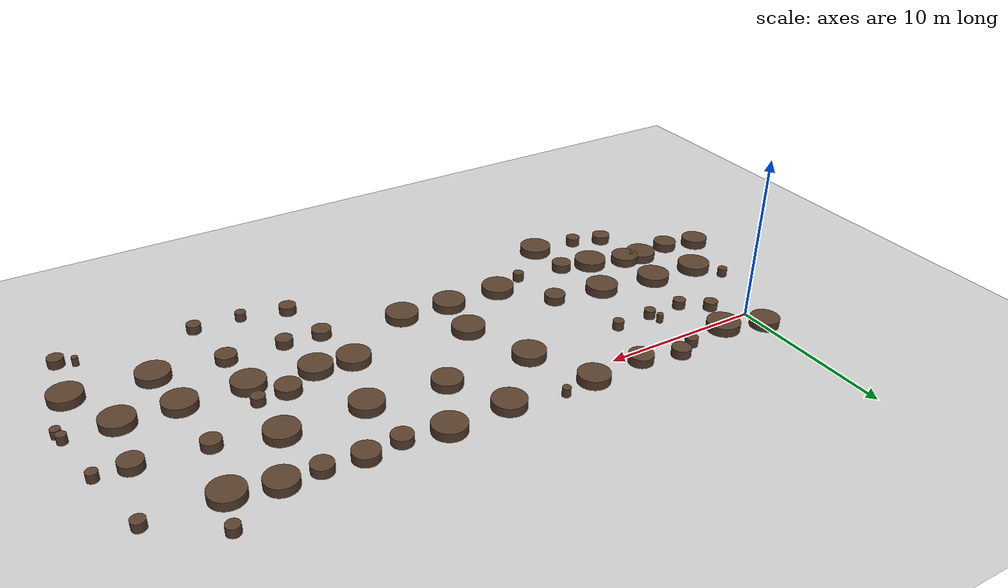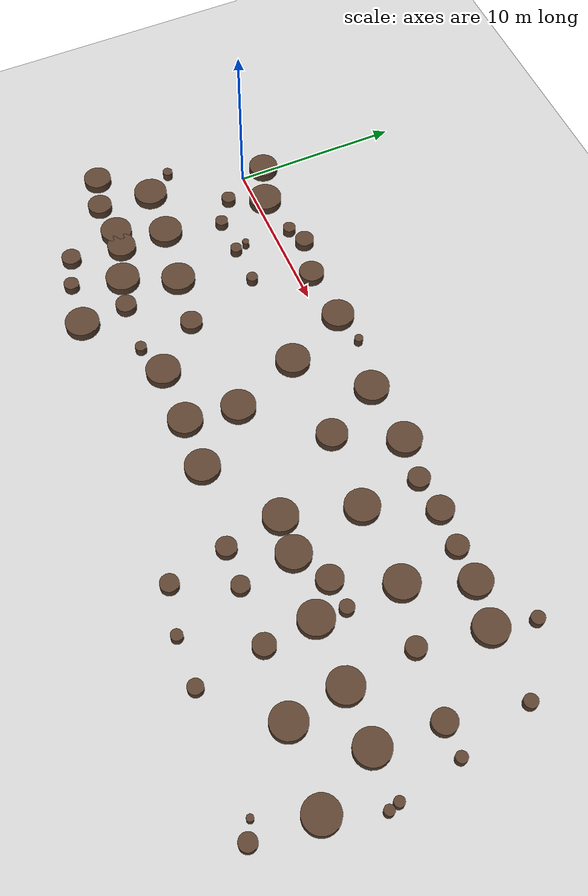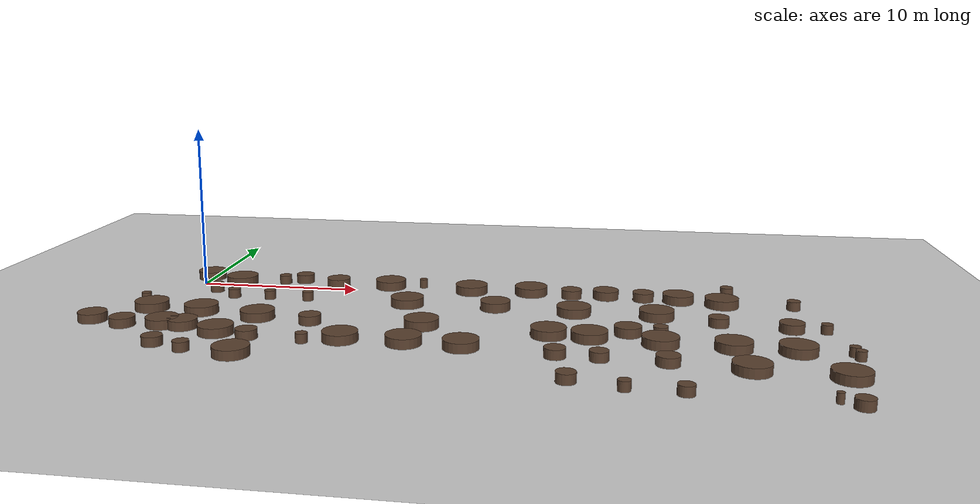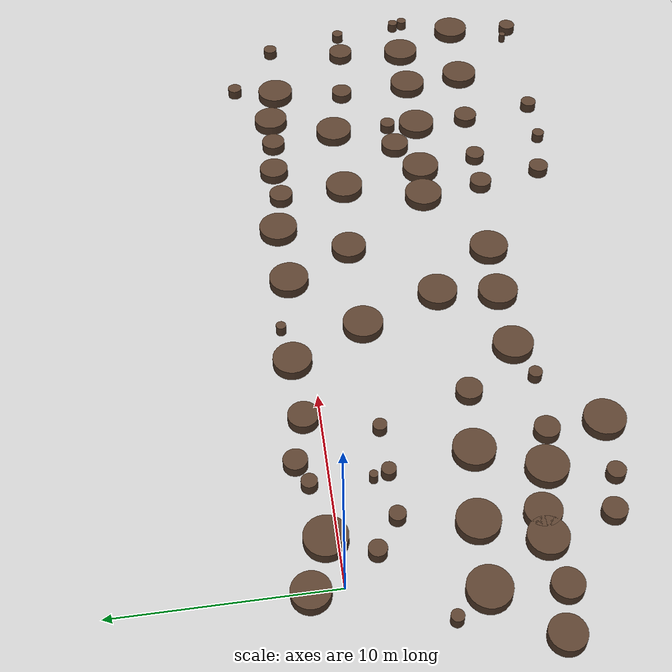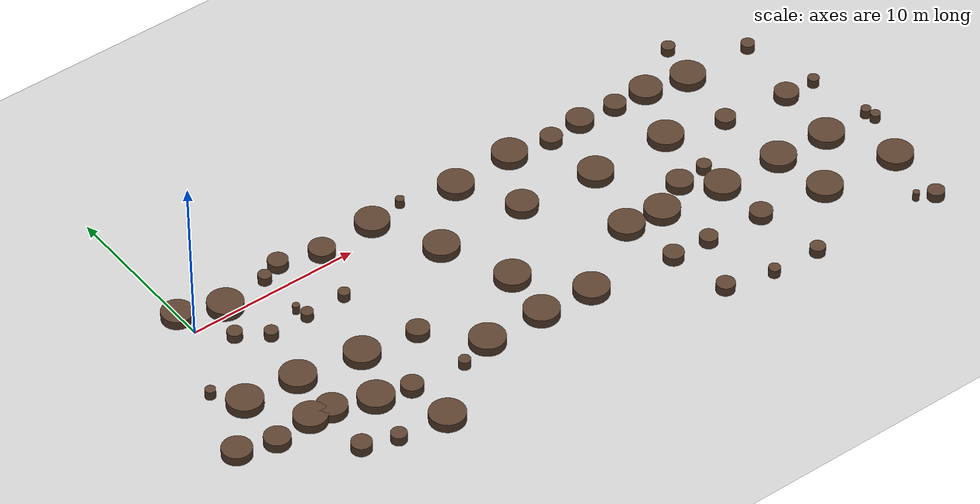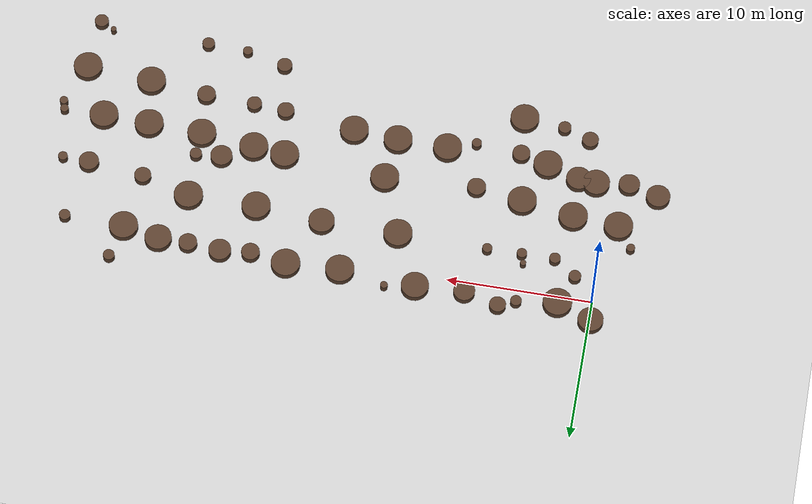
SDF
<?xml version="1.0"?>
<sdf version="1.6">
  <world name="orchard_world">
    <include>
      <uri>model://sun</uri>
    </include>

    <include>
      <uri>model://ground_plane</uri>
    </include>

    <!-- Trees: 66 cylinders (height=0.550m) -->
    <model name="tree_0000">
      <static>true</static>
      <pose>37.219902 -15.308496 0 0 0 0</pose>
      <link name="link">
        <collision name="trunk_collision">
          <pose>0 0 0.275000 0 0 0</pose>
          <geometry>
            <cylinder>
              <radius>0.481341</radius>
              <length>0.550000</length>
            </cylinder>
          </geometry>
        </collision>
        <visual name="trunk_visual">
          <pose>0 0 0.275000 0 0 0</pose>
          <geometry>
            <cylinder>
              <radius>0.481341</radius>
              <length>0.550000</length>
            </cylinder>
          </geometry>
          <material>
            <ambient>0.25 0.18 0.12 1</ambient>
            <diffuse>0.35 0.25 0.18 1</diffuse>
          </material>
        </visual>
      </link>
    </model>
    <model name="tree_0001">
      <static>true</static>
      <pose>29.460762 -14.848864 0 0 0 0</pose>
      <link name="link">
        <collision name="trunk_collision">
          <pose>0 0 0.275000 0 0 0</pose>
          <geometry>
            <cylinder>
              <radius>0.434552</radius>
              <length>0.550000</length>
            </cylinder>
          </geometry>
        </collision>
        <visual name="trunk_visual">
          <pose>0 0 0.275000 0 0 0</pose>
          <geometry>
            <cylinder>
              <radius>0.434552</radius>
              <length>0.550000</length>
            </cylinder>
          </geometry>
          <material>
            <ambient>0.25 0.18 0.12 1</ambient>
            <diffuse>0.35 0.25 0.18 1</diffuse>
          </material>
        </visual>
      </link>
    </model>
    <model name="tree_0002">
      <static>true</static>
      <pose>36.266296 -14.798975 0 0 0 0</pose>
      <link name="link">
        <collision name="trunk_collision">
          <pose>0 0 0.275000 0 0 0</pose>
          <geometry>
            <cylinder>
              <radius>0.190020</radius>
              <length>0.550000</length>
            </cylinder>
          </geometry>
        </collision>
        <visual name="trunk_visual">
          <pose>0 0 0.275000 0 0 0</pose>
          <geometry>
            <cylinder>
              <radius>0.190020</radius>
              <length>0.550000</length>
            </cylinder>
          </geometry>
          <material>
            <ambient>0.25 0.18 0.12 1</ambient>
            <diffuse>0.35 0.25 0.18 1</diffuse>
          </material>
        </visual>
      </link>
    </model>
    <model name="tree_0003">
      <static>true</static>
      <pose>26.624523 -14.742422 0 0 0 0</pose>
      <link name="link">
        <collision name="trunk_collision">
          <pose>0 0 0.275000 0 0 0</pose>
          <geometry>
            <cylinder>
              <radius>0.333014</radius>
              <length>0.550000</length>
            </cylinder>
          </geometry>
        </collision>
        <visual name="trunk_visual">
          <pose>0 0 0.275000 0 0 0</pose>
          <geometry>
            <cylinder>
              <radius>0.333014</radius>
              <length>0.550000</length>
            </cylinder>
          </geometry>
          <material>
            <ambient>0.25 0.18 0.12 1</ambient>
            <diffuse>0.35 0.25 0.18 1</diffuse>
          </material>
        </visual>
      </link>
    </model>
    <model name="tree_0004">
      <static>true</static>
      <pose>23.874138 -14.086459 0 0 0 0</pose>
      <link name="link">
        <collision name="trunk_collision">
          <pose>0 0 0.275000 0 0 0</pose>
          <geometry>
            <cylinder>
              <radius>0.524310</radius>
              <length>0.550000</length>
            </cylinder>
          </geometry>
        </collision>
        <visual name="trunk_visual">
          <pose>0 0 0.275000 0 0 0</pose>
          <geometry>
            <cylinder>
              <radius>0.524310</radius>
              <length>0.550000</length>
            </cylinder>
          </geometry>
          <material>
            <ambient>0.25 0.18 0.12 1</ambient>
            <diffuse>0.35 0.25 0.18 1</diffuse>
          </material>
        </visual>
      </link>
    </model>
    <model name="tree_0005">
      <static>true</static>
      <pose>6.638331 -12.941549 0 0 0 0</pose>
      <link name="link">
        <collision name="trunk_collision">
          <pose>0 0 0.275000 0 0 0</pose>
          <geometry>
            <cylinder>
              <radius>1.000000</radius>
              <length>0.550000</length>
            </cylinder>
          </geometry>
        </collision>
        <visual name="trunk_visual">
          <pose>0 0 0.275000 0 0 0</pose>
          <geometry>
            <cylinder>
              <radius>1.000000</radius>
              <length>0.550000</length>
            </cylinder>
          </geometry>
          <material>
            <ambient>0.25 0.18 0.12 1</ambient>
            <diffuse>0.35 0.25 0.18 1</diffuse>
          </material>
        </visual>
      </link>
    </model>
    <model name="tree_0006">
      <static>true</static>
      <pose>3.782352 -12.650820 0 0 0 0</pose>
      <link name="link">
        <collision name="trunk_collision">
          <pose>0 0 0.275000 0 0 0</pose>
          <geometry>
            <cylinder>
              <radius>0.447337</radius>
              <length>0.550000</length>
            </cylinder>
          </geometry>
        </collision>
        <visual name="trunk_visual">
          <pose>0 0 0.275000 0 0 0</pose>
          <geometry>
            <cylinder>
              <radius>0.447337</radius>
              <length>0.550000</length>
            </cylinder>
          </geometry>
          <material>
            <ambient>0.25 0.18 0.12 1</ambient>
            <diffuse>0.35 0.25 0.18 1</diffuse>
          </material>
        </visual>
      </link>
    </model>
    <model name="tree_0007">
      <static>true</static>
      <pose>1.895289 -12.027858 0 0 0 0</pose>
      <link name="link">
        <collision name="trunk_collision">
          <pose>0 0 0.275000 0 0 0</pose>
          <geometry>
            <cylinder>
              <radius>0.571234</radius>
              <length>0.550000</length>
            </cylinder>
          </geometry>
        </collision>
        <visual name="trunk_visual">
          <pose>0 0 0.275000 0 0 0</pose>
          <geometry>
            <cylinder>
              <radius>0.571234</radius>
              <length>0.550000</length>
            </cylinder>
          </geometry>
          <material>
            <ambient>0.25 0.18 0.12 1</ambient>
            <diffuse>0.35 0.25 0.18 1</diffuse>
          </material>
        </visual>
      </link>
    </model>
    <model name="tree_0008">
      <static>true</static>
      <pose>37.454666 -11.682571 0 0 0 0</pose>
      <link name="link">
        <collision name="trunk_collision">
          <pose>0 0 0.275000 0 0 0</pose>
          <geometry>
            <cylinder>
              <radius>1.000000</radius>
              <length>0.550000</length>
            </cylinder>
          </geometry>
        </collision>
        <visual name="trunk_visual">
          <pose>0 0 0.275000 0 0 0</pose>
          <geometry>
            <cylinder>
              <radius>1.000000</radius>
              <length>0.550000</length>
            </cylinder>
          </geometry>
          <material>
            <ambient>0.25 0.18 0.12 1</ambient>
            <diffuse>0.35 0.25 0.18 1</diffuse>
          </material>
        </visual>
      </link>
    </model>
    <model name="tree_0009">
      <static>true</static>
      <pose>32.858498 -11.331612 0 0 0 0</pose>
      <link name="link">
        <collision name="trunk_collision">
          <pose>0 0 0.275000 0 0 0</pose>
          <geometry>
            <cylinder>
              <radius>1.000000</radius>
              <length>0.550000</length>
            </cylinder>
          </geometry>
        </collision>
        <visual name="trunk_visual">
          <pose>0 0 0.275000 0 0 0</pose>
          <geometry>
            <cylinder>
              <radius>1.000000</radius>
              <length>0.550000</length>
            </cylinder>
          </geometry>
          <material>
            <ambient>0.25 0.18 0.12 1</ambient>
            <diffuse>0.35 0.25 0.18 1</diffuse>
          </material>
        </visual>
      </link>
    </model>
    <model name="tree_0010">
      <static>true</static>
      <pose>28.840132 -10.903311 0 0 0 0</pose>
      <link name="link">
        <collision name="trunk_collision">
          <pose>0 0 0.275000 0 0 0</pose>
          <geometry>
            <cylinder>
              <radius>0.635298</radius>
              <length>0.550000</length>
            </cylinder>
          </geometry>
        </collision>
        <visual name="trunk_visual">
          <pose>0 0 0.275000 0 0 0</pose>
          <geometry>
            <cylinder>
              <radius>0.635298</radius>
              <length>0.550000</length>
            </cylinder>
          </geometry>
          <material>
            <ambient>0.25 0.18 0.12 1</ambient>
            <diffuse>0.35 0.25 0.18 1</diffuse>
          </material>
        </visual>
      </link>
    </model>
    <model name="tree_0011">
      <static>true</static>
      <pose>25.411903 -10.767055 0 0 0 0</pose>
      <link name="link">
        <collision name="trunk_collision">
          <pose>0 0 0.275000 0 0 0</pose>
          <geometry>
            <cylinder>
              <radius>0.511634</radius>
              <length>0.550000</length>
            </cylinder>
          </geometry>
        </collision>
        <visual name="trunk_visual">
          <pose>0 0 0.275000 0 0 0</pose>
          <geometry>
            <cylinder>
              <radius>0.511634</radius>
              <length>0.550000</length>
            </cylinder>
          </geometry>
          <material>
            <ambient>0.25 0.18 0.12 1</ambient>
            <diffuse>0.35 0.25 0.18 1</diffuse>
          </material>
        </visual>
      </link>
    </model>
    <model name="tree_0012">
      <static>true</static>
      <pose>23.156864 -10.623858 0 0 0 0</pose>
      <link name="link">
        <collision name="trunk_collision">
          <pose>0 0 0.275000 0 0 0</pose>
          <geometry>
            <cylinder>
              <radius>0.582248</radius>
              <length>0.550000</length>
            </cylinder>
          </geometry>
        </collision>
        <visual name="trunk_visual">
          <pose>0 0 0.275000 0 0 0</pose>
          <geometry>
            <cylinder>
              <radius>0.582248</radius>
              <length>0.550000</length>
            </cylinder>
          </geometry>
          <material>
            <ambient>0.25 0.18 0.12 1</ambient>
            <diffuse>0.35 0.25 0.18 1</diffuse>
          </material>
        </visual>
      </link>
    </model>
    <model name="tree_0013">
      <static>true</static>
      <pose>9.627531 -10.404451 0 0 0 0</pose>
      <link name="link">
        <collision name="trunk_collision">
          <pose>0 0 0.275000 0 0 0</pose>
          <geometry>
            <cylinder>
              <radius>0.335986</radius>
              <length>0.550000</length>
            </cylinder>
          </geometry>
        </collision>
        <visual name="trunk_visual">
          <pose>0 0 0.275000 0 0 0</pose>
          <geometry>
            <cylinder>
              <radius>0.335986</radius>
              <length>0.550000</length>
            </cylinder>
          </geometry>
          <material>
            <ambient>0.25 0.18 0.12 1</ambient>
            <diffuse>0.35 0.25 0.18 1</diffuse>
          </material>
        </visual>
      </link>
    </model>
    <model name="tree_0014">
      <static>true</static>
      <pose>6.452726 -10.169643 0 0 0 0</pose>
      <link name="link">
        <collision name="trunk_collision">
          <pose>0 0 0.275000 0 0 0</pose>
          <geometry>
            <cylinder>
              <radius>0.612415</radius>
              <length>0.550000</length>
            </cylinder>
          </geometry>
        </collision>
        <visual name="trunk_visual">
          <pose>0 0 0.275000 0 0 0</pose>
          <geometry>
            <cylinder>
              <radius>0.612415</radius>
              <length>0.550000</length>
            </cylinder>
          </geometry>
          <material>
            <ambient>0.25 0.18 0.12 1</ambient>
            <diffuse>0.35 0.25 0.18 1</diffuse>
          </material>
        </visual>
      </link>
    </model>
    <model name="tree_0015">
      <static>true</static>
      <pose>18.198654 -10.003636 0 0 0 0</pose>
      <link name="link">
        <collision name="trunk_collision">
          <pose>0 0 0.275000 0 0 0</pose>
          <geometry>
            <cylinder>
              <radius>1.000000</radius>
              <length>0.550000</length>
            </cylinder>
          </geometry>
        </collision>
        <visual name="trunk_visual">
          <pose>0 0 0.275000 0 0 0</pose>
          <geometry>
            <cylinder>
              <radius>1.000000</radius>
              <length>0.550000</length>
            </cylinder>
          </geometry>
          <material>
            <ambient>0.25 0.18 0.12 1</ambient>
            <diffuse>0.35 0.25 0.18 1</diffuse>
          </material>
        </visual>
      </link>
    </model>
    <model name="tree_0016">
      <static>true</static>
      <pose>15.073891 -9.798834 0 0 0 0</pose>
      <link name="link">
        <collision name="trunk_collision">
          <pose>0 0 0.275000 0 0 0</pose>
          <geometry>
            <cylinder>
              <radius>1.000000</radius>
              <length>0.550000</length>
            </cylinder>
          </geometry>
        </collision>
        <visual name="trunk_visual">
          <pose>0 0 0.275000 0 0 0</pose>
          <geometry>
            <cylinder>
              <radius>1.000000</radius>
              <length>0.550000</length>
            </cylinder>
          </geometry>
          <material>
            <ambient>0.25 0.18 0.12 1</ambient>
            <diffuse>0.35 0.25 0.18 1</diffuse>
          </material>
        </visual>
      </link>
    </model>
    <model name="tree_0017">
      <static>true</static>
      <pose>11.580428 -9.771530 0 0 0 0</pose>
      <link name="link">
        <collision name="trunk_collision">
          <pose>0 0 0.275000 0 0 0</pose>
          <geometry>
            <cylinder>
              <radius>1.000000</radius>
              <length>0.550000</length>
            </cylinder>
          </geometry>
        </collision>
        <visual name="trunk_visual">
          <pose>0 0 0.275000 0 0 0</pose>
          <geometry>
            <cylinder>
              <radius>1.000000</radius>
              <length>0.550000</length>
            </cylinder>
          </geometry>
          <material>
            <ambient>0.25 0.18 0.12 1</ambient>
            <diffuse>0.35 0.25 0.18 1</diffuse>
          </material>
        </visual>
      </link>
    </model>
    <model name="tree_0018">
      <static>true</static>
      <pose>4.513428 -9.688703 0 0 0 0</pose>
      <link name="link">
        <collision name="trunk_collision">
          <pose>0 0 0.275000 0 0 0</pose>
          <geometry>
            <cylinder>
              <radius>1.000000</radius>
              <length>0.550000</length>
            </cylinder>
          </geometry>
        </collision>
        <visual name="trunk_visual">
          <pose>0 0 0.275000 0 0 0</pose>
          <geometry>
            <cylinder>
              <radius>1.000000</radius>
              <length>0.550000</length>
            </cylinder>
          </geometry>
          <material>
            <ambient>0.25 0.18 0.12 1</ambient>
            <diffuse>0.35 0.25 0.18 1</diffuse>
          </material>
        </visual>
      </link>
    </model>
    <model name="tree_0019">
      <static>true</static>
      <pose>-1.261455 -9.108655 0 0 0 0</pose>
      <link name="link">
        <collision name="trunk_collision">
          <pose>0 0 0.275000 0 0 0</pose>
          <geometry>
            <cylinder>
              <radius>0.727123</radius>
              <length>0.550000</length>
            </cylinder>
          </geometry>
        </collision>
        <visual name="trunk_visual">
          <pose>0 0 0.275000 0 0 0</pose>
          <geometry>
            <cylinder>
              <radius>0.727123</radius>
              <length>0.550000</length>
            </cylinder>
          </geometry>
          <material>
            <ambient>0.25 0.18 0.12 1</ambient>
            <diffuse>0.35 0.25 0.18 1</diffuse>
          </material>
        </visual>
      </link>
    </model>
    <model name="tree_0020">
      <static>true</static>
      <pose>2.261715 -8.944628 0 0 0 0</pose>
      <link name="link">
        <collision name="trunk_collision">
          <pose>0 0 0.275000 0 0 0</pose>
          <geometry>
            <cylinder>
              <radius>0.851832</radius>
              <length>0.550000</length>
            </cylinder>
          </geometry>
        </collision>
        <visual name="trunk_visual">
          <pose>0 0 0.275000 0 0 0</pose>
          <geometry>
            <cylinder>
              <radius>0.851832</radius>
              <length>0.550000</length>
            </cylinder>
          </geometry>
          <material>
            <ambient>0.25 0.18 0.12 1</ambient>
            <diffuse>0.35 0.25 0.18 1</diffuse>
          </material>
        </visual>
      </link>
    </model>
    <model name="tree_0021">
      <static>true</static>
      <pose>1.006804 -8.846239 0 0 0 0</pose>
      <link name="link">
        <collision name="trunk_collision">
          <pose>0 0 0.275000 0 0 0</pose>
          <geometry>
            <cylinder>
              <radius>0.933292</radius>
              <length>0.550000</length>
            </cylinder>
          </geometry>
        </collision>
        <visual name="trunk_visual">
          <pose>0 0 0.275000 0 0 0</pose>
          <geometry>
            <cylinder>
              <radius>0.933292</radius>
              <length>0.550000</length>
            </cylinder>
          </geometry>
          <material>
            <ambient>0.25 0.18 0.12 1</ambient>
            <diffuse>0.35 0.25 0.18 1</diffuse>
          </material>
        </visual>
      </link>
    </model>
    <model name="tree_0022">
      <static>true</static>
      <pose>38.556816 -8.702170 0 0 0 0</pose>
      <link name="link">
        <collision name="trunk_collision">
          <pose>0 0 0.275000 0 0 0</pose>
          <geometry>
            <cylinder>
              <radius>0.285687</radius>
              <length>0.550000</length>
            </cylinder>
          </geometry>
        </collision>
        <visual name="trunk_visual">
          <pose>0 0 0.275000 0 0 0</pose>
          <geometry>
            <cylinder>
              <radius>0.285687</radius>
              <length>0.550000</length>
            </cylinder>
          </geometry>
          <material>
            <ambient>0.25 0.18 0.12 1</ambient>
            <diffuse>0.35 0.25 0.18 1</diffuse>
          </material>
        </visual>
      </link>
    </model>
    <model name="tree_0023">
      <static>true</static>
      <pose>-3.353376 -8.535335 0 0 0 0</pose>
      <link name="link">
        <collision name="trunk_collision">
          <pose>0 0 0.275000 0 0 0</pose>
          <geometry>
            <cylinder>
              <radius>0.825473</radius>
              <length>0.550000</length>
            </cylinder>
          </geometry>
        </collision>
        <visual name="trunk_visual">
          <pose>0 0 0.275000 0 0 0</pose>
          <geometry>
            <cylinder>
              <radius>0.825473</radius>
              <length>0.550000</length>
            </cylinder>
          </geometry>
          <material>
            <ambient>0.25 0.18 0.12 1</ambient>
            <diffuse>0.35 0.25 0.18 1</diffuse>
          </material>
        </visual>
      </link>
    </model>
    <model name="tree_0024">
      <static>true</static>
      <pose>35.600525 -8.152077 0 0 0 0</pose>
      <link name="link">
        <collision name="trunk_collision">
          <pose>0 0 0.275000 0 0 0</pose>
          <geometry>
            <cylinder>
              <radius>1.000000</radius>
              <length>0.550000</length>
            </cylinder>
          </geometry>
        </collision>
        <visual name="trunk_visual">
          <pose>0 0 0.275000 0 0 0</pose>
          <geometry>
            <cylinder>
              <radius>1.000000</radius>
              <length>0.550000</length>
            </cylinder>
          </geometry>
          <material>
            <ambient>0.25 0.18 0.12 1</ambient>
            <diffuse>0.35 0.25 0.18 1</diffuse>
          </material>
        </visual>
      </link>
    </model>
    <model name="tree_0025">
      <static>true</static>
      <pose>38.391872 -8.099730 0 0 0 0</pose>
      <link name="link">
        <collision name="trunk_collision">
          <pose>0 0 0.275000 0 0 0</pose>
          <geometry>
            <cylinder>
              <radius>0.288964</radius>
              <length>0.550000</length>
            </cylinder>
          </geometry>
        </collision>
        <visual name="trunk_visual">
          <pose>0 0 0.275000 0 0 0</pose>
          <geometry>
            <cylinder>
              <radius>0.288964</radius>
              <length>0.550000</length>
            </cylinder>
          </geometry>
          <material>
            <ambient>0.25 0.18 0.12 1</ambient>
            <diffuse>0.35 0.25 0.18 1</diffuse>
          </material>
        </visual>
      </link>
    </model>
    <model name="tree_0026">
      <static>true</static>
      <pose>32.365799 -8.036779 0 0 0 0</pose>
      <link name="link">
        <collision name="trunk_collision">
          <pose>0 0 0.275000 0 0 0</pose>
          <geometry>
            <cylinder>
              <radius>1.000000</radius>
              <length>0.550000</length>
            </cylinder>
          </geometry>
        </collision>
        <visual name="trunk_visual">
          <pose>0 0 0.275000 0 0 0</pose>
          <geometry>
            <cylinder>
              <radius>1.000000</radius>
              <length>0.550000</length>
            </cylinder>
          </geometry>
          <material>
            <ambient>0.25 0.18 0.12 1</ambient>
            <diffuse>0.35 0.25 0.18 1</diffuse>
          </material>
        </visual>
      </link>
    </model>
    <model name="tree_0027">
      <static>true</static>
      <pose>28.603752 -7.937628 0 0 0 0</pose>
      <link name="link">
        <collision name="trunk_collision">
          <pose>0 0 0.275000 0 0 0</pose>
          <geometry>
            <cylinder>
              <radius>1.000000</radius>
              <length>0.550000</length>
            </cylinder>
          </geometry>
        </collision>
        <visual name="trunk_visual">
          <pose>0 0 0.275000 0 0 0</pose>
          <geometry>
            <cylinder>
              <radius>1.000000</radius>
              <length>0.550000</length>
            </cylinder>
          </geometry>
          <material>
            <ambient>0.25 0.18 0.12 1</ambient>
            <diffuse>0.35 0.25 0.18 1</diffuse>
          </material>
        </visual>
      </link>
    </model>
    <model name="tree_0028">
      <static>true</static>
      <pose>24.855679 -7.526499 0 0 0 0</pose>
      <link name="link">
        <collision name="trunk_collision">
          <pose>0 0 0.275000 0 0 0</pose>
          <geometry>
            <cylinder>
              <radius>1.000000</radius>
              <length>0.550000</length>
            </cylinder>
          </geometry>
        </collision>
        <visual name="trunk_visual">
          <pose>0 0 0.275000 0 0 0</pose>
          <geometry>
            <cylinder>
              <radius>1.000000</radius>
              <length>0.550000</length>
            </cylinder>
          </geometry>
          <material>
            <ambient>0.25 0.18 0.12 1</ambient>
            <diffuse>0.35 0.25 0.18 1</diffuse>
          </material>
        </visual>
      </link>
    </model>
    <model name="tree_0029">
      <static>true</static>
      <pose>22.633177 -7.301185 0 0 0 0</pose>
      <link name="link">
        <collision name="trunk_collision">
          <pose>0 0 0.275000 0 0 0</pose>
          <geometry>
            <cylinder>
              <radius>1.000000</radius>
              <length>0.550000</length>
            </cylinder>
          </geometry>
        </collision>
        <visual name="trunk_visual">
          <pose>0 0 0.275000 0 0 0</pose>
          <geometry>
            <cylinder>
              <radius>1.000000</radius>
              <length>0.550000</length>
            </cylinder>
          </geometry>
          <material>
            <ambient>0.25 0.18 0.12 1</ambient>
            <diffuse>0.35 0.25 0.18 1</diffuse>
          </material>
        </visual>
      </link>
    </model>
    <model name="tree_0030">
      <static>true</static>
      <pose>9.100792 -7.082886 0 0 0 0</pose>
      <link name="link">
        <collision name="trunk_collision">
          <pose>0 0 0.275000 0 0 0</pose>
          <geometry>
            <cylinder>
              <radius>0.642459</radius>
              <length>0.550000</length>
            </cylinder>
          </geometry>
        </collision>
        <visual name="trunk_visual">
          <pose>0 0 0.275000 0 0 0</pose>
          <geometry>
            <cylinder>
              <radius>0.642459</radius>
              <length>0.550000</length>
            </cylinder>
          </geometry>
          <material>
            <ambient>0.25 0.18 0.12 1</ambient>
            <diffuse>0.35 0.25 0.18 1</diffuse>
          </material>
        </visual>
      </link>
    </model>
    <model name="tree_0031">
      <static>true</static>
      <pose>15.483120 -6.752225 0 0 0 0</pose>
      <link name="link">
        <collision name="trunk_collision">
          <pose>0 0 0.275000 0 0 0</pose>
          <geometry>
            <cylinder>
              <radius>1.000000</radius>
              <length>0.550000</length>
            </cylinder>
          </geometry>
        </collision>
        <visual name="trunk_visual">
          <pose>0 0 0.275000 0 0 0</pose>
          <geometry>
            <cylinder>
              <radius>1.000000</radius>
              <length>0.550000</length>
            </cylinder>
          </geometry>
          <material>
            <ambient>0.25 0.18 0.12 1</ambient>
            <diffuse>0.35 0.25 0.18 1</diffuse>
          </material>
        </visual>
      </link>
    </model>
    <model name="tree_0032">
      <static>true</static>
      <pose>5.843584 -6.643099 0 0 0 0</pose>
      <link name="link">
        <collision name="trunk_collision">
          <pose>0 0 0.275000 0 0 0</pose>
          <geometry>
            <cylinder>
              <radius>1.000000</radius>
              <length>0.550000</length>
            </cylinder>
          </geometry>
        </collision>
        <visual name="trunk_visual">
          <pose>0 0 0.275000 0 0 0</pose>
          <geometry>
            <cylinder>
              <radius>1.000000</radius>
              <length>0.550000</length>
            </cylinder>
          </geometry>
          <material>
            <ambient>0.25 0.18 0.12 1</ambient>
            <diffuse>0.35 0.25 0.18 1</diffuse>
          </material>
        </visual>
      </link>
    </model>
    <model name="tree_0033">
      <static>true</static>
      <pose>26.923798 -6.401568 0 0 0 0</pose>
      <link name="link">
        <collision name="trunk_collision">
          <pose>0 0 0.275000 0 0 0</pose>
          <geometry>
            <cylinder>
              <radius>0.757077</radius>
              <length>0.550000</length>
            </cylinder>
          </geometry>
        </collision>
        <visual name="trunk_visual">
          <pose>0 0 0.275000 0 0 0</pose>
          <geometry>
            <cylinder>
              <radius>0.757077</radius>
              <length>0.550000</length>
            </cylinder>
          </geometry>
          <material>
            <ambient>0.25 0.18 0.12 1</ambient>
            <diffuse>0.35 0.25 0.18 1</diffuse>
          </material>
        </visual>
      </link>
    </model>
    <model name="tree_0034">
      <static>true</static>
      <pose>28.694939 -6.250850 0 0 0 0</pose>
      <link name="link">
        <collision name="trunk_collision">
          <pose>0 0 0.275000 0 0 0</pose>
          <geometry>
            <cylinder>
              <radius>0.414537</radius>
              <length>0.550000</length>
            </cylinder>
          </geometry>
        </collision>
        <visual name="trunk_visual">
          <pose>0 0 0.275000 0 0 0</pose>
          <geometry>
            <cylinder>
              <radius>0.414537</radius>
              <length>0.550000</length>
            </cylinder>
          </geometry>
          <material>
            <ambient>0.25 0.18 0.12 1</ambient>
            <diffuse>0.35 0.25 0.18 1</diffuse>
          </material>
        </visual>
      </link>
    </model>
    <model name="tree_0035">
      <static>true</static>
      <pose>2.202819 -6.069530 0 0 0 0</pose>
      <link name="link">
        <collision name="trunk_collision">
          <pose>0 0 0.275000 0 0 0</pose>
          <geometry>
            <cylinder>
              <radius>1.000000</radius>
              <length>0.550000</length>
            </cylinder>
          </geometry>
        </collision>
        <visual name="trunk_visual">
          <pose>0 0 0.275000 0 0 0</pose>
          <geometry>
            <cylinder>
              <radius>1.000000</radius>
              <length>0.550000</length>
            </cylinder>
          </geometry>
          <material>
            <ambient>0.25 0.18 0.12 1</ambient>
            <diffuse>0.35 0.25 0.18 1</diffuse>
          </material>
        </visual>
      </link>
    </model>
    <model name="tree_0036">
      <static>true</static>
      <pose>-0.976841 -5.867651 0 0 0 0</pose>
      <link name="link">
        <collision name="trunk_collision">
          <pose>0 0 0.275000 0 0 0</pose>
          <geometry>
            <cylinder>
              <radius>1.000000</radius>
              <length>0.550000</length>
            </cylinder>
          </geometry>
        </collision>
        <visual name="trunk_visual">
          <pose>0 0 0.275000 0 0 0</pose>
          <geometry>
            <cylinder>
              <radius>1.000000</radius>
              <length>0.550000</length>
            </cylinder>
          </geometry>
          <material>
            <ambient>0.25 0.18 0.12 1</ambient>
            <diffuse>0.35 0.25 0.18 1</diffuse>
          </material>
        </visual>
      </link>
    </model>
    <model name="tree_0037">
      <static>true</static>
      <pose>37.737026 -4.457987 0 0 0 0</pose>
      <link name="link">
        <collision name="trunk_collision">
          <pose>0 0 0.275000 0 0 0</pose>
          <geometry>
            <cylinder>
              <radius>0.325007</radius>
              <length>0.550000</length>
            </cylinder>
          </geometry>
        </collision>
        <visual name="trunk_visual">
          <pose>0 0 0.275000 0 0 0</pose>
          <geometry>
            <cylinder>
              <radius>0.325007</radius>
              <length>0.550000</length>
            </cylinder>
          </geometry>
          <material>
            <ambient>0.25 0.18 0.12 1</ambient>
            <diffuse>0.35 0.25 0.18 1</diffuse>
          </material>
        </visual>
      </link>
    </model>
    <model name="tree_0038">
      <static>true</static>
      <pose>35.892895 -4.397911 0 0 0 0</pose>
      <link name="link">
        <collision name="trunk_collision">
          <pose>0 0 0.275000 0 0 0</pose>
          <geometry>
            <cylinder>
              <radius>0.690062</radius>
              <length>0.550000</length>
            </cylinder>
          </geometry>
        </collision>
        <visual name="trunk_visual">
          <pose>0 0 0.275000 0 0 0</pose>
          <geometry>
            <cylinder>
              <radius>0.690062</radius>
              <length>0.550000</length>
            </cylinder>
          </geometry>
          <material>
            <ambient>0.25 0.18 0.12 1</ambient>
            <diffuse>0.35 0.25 0.18 1</diffuse>
          </material>
        </visual>
      </link>
    </model>
    <model name="tree_0039">
      <static>true</static>
      <pose>-2.045352 -4.312446 0 0 0 0</pose>
      <link name="link">
        <collision name="trunk_collision">
          <pose>0 0 0.275000 0 0 0</pose>
          <geometry>
            <cylinder>
              <radius>0.293715</radius>
              <length>0.550000</length>
            </cylinder>
          </geometry>
        </collision>
        <visual name="trunk_visual">
          <pose>0 0 0.275000 0 0 0</pose>
          <geometry>
            <cylinder>
              <radius>0.293715</radius>
              <length>0.550000</length>
            </cylinder>
          </geometry>
          <material>
            <ambient>0.25 0.18 0.12 1</ambient>
            <diffuse>0.35 0.25 0.18 1</diffuse>
          </material>
        </visual>
      </link>
    </model>
    <model name="tree_0040">
      <static>true</static>
      <pose>32.000618 -3.978483 0 0 0 0</pose>
      <link name="link">
        <collision name="trunk_collision">
          <pose>0 0 0.275000 0 0 0</pose>
          <geometry>
            <cylinder>
              <radius>0.576257</radius>
              <length>0.550000</length>
            </cylinder>
          </geometry>
        </collision>
        <visual name="trunk_visual">
          <pose>0 0 0.275000 0 0 0</pose>
          <geometry>
            <cylinder>
              <radius>0.576257</radius>
              <length>0.550000</length>
            </cylinder>
          </geometry>
          <material>
            <ambient>0.25 0.18 0.12 1</ambient>
            <diffuse>0.35 0.25 0.18 1</diffuse>
          </material>
        </visual>
      </link>
    </model>
    <model name="tree_0041">
      <static>true</static>
      <pose>28.606977 -3.079986 0 0 0 0</pose>
      <link name="link">
        <collision name="trunk_collision">
          <pose>0 0 0.275000 0 0 0</pose>
          <geometry>
            <cylinder>
              <radius>1.000000</radius>
              <length>0.550000</length>
            </cylinder>
          </geometry>
        </collision>
        <visual name="trunk_visual">
          <pose>0 0 0.275000 0 0 0</pose>
          <geometry>
            <cylinder>
              <radius>1.000000</radius>
              <length>0.550000</length>
            </cylinder>
          </geometry>
          <material>
            <ambient>0.25 0.18 0.12 1</ambient>
            <diffuse>0.35 0.25 0.18 1</diffuse>
          </material>
        </visual>
      </link>
    </model>
    <model name="tree_0042">
      <static>true</static>
      <pose>23.853498 -3.074679 0 0 0 0</pose>
      <link name="link">
        <collision name="trunk_collision">
          <pose>0 0 0.275000 0 0 0</pose>
          <geometry>
            <cylinder>
              <radius>1.000000</radius>
              <length>0.550000</length>
            </cylinder>
          </geometry>
        </collision>
        <visual name="trunk_visual">
          <pose>0 0 0.275000 0 0 0</pose>
          <geometry>
            <cylinder>
              <radius>1.000000</radius>
              <length>0.550000</length>
            </cylinder>
          </geometry>
          <material>
            <ambient>0.25 0.18 0.12 1</ambient>
            <diffuse>0.35 0.25 0.18 1</diffuse>
          </material>
        </visual>
      </link>
    </model>
    <model name="tree_0043">
      <static>true</static>
      <pose>13.874519 -2.708086 0 0 0 0</pose>
      <link name="link">
        <collision name="trunk_collision">
          <pose>0 0 0.275000 0 0 0</pose>
          <geometry>
            <cylinder>
              <radius>1.000000</radius>
              <length>0.550000</length>
            </cylinder>
          </geometry>
        </collision>
        <visual name="trunk_visual">
          <pose>0 0 0.275000 0 0 0</pose>
          <geometry>
            <cylinder>
              <radius>1.000000</radius>
              <length>0.550000</length>
            </cylinder>
          </geometry>
          <material>
            <ambient>0.25 0.18 0.12 1</ambient>
            <diffuse>0.35 0.25 0.18 1</diffuse>
          </material>
        </visual>
      </link>
    </model>
    <model name="tree_0044">
      <static>true</static>
      <pose>19.198460 -2.706586 0 0 0 0</pose>
      <link name="link">
        <collision name="trunk_collision">
          <pose>0 0 0.275000 0 0 0</pose>
          <geometry>
            <cylinder>
              <radius>0.897185</radius>
              <length>0.550000</length>
            </cylinder>
          </geometry>
        </collision>
        <visual name="trunk_visual">
          <pose>0 0 0.275000 0 0 0</pose>
          <geometry>
            <cylinder>
              <radius>0.897185</radius>
              <length>0.550000</length>
            </cylinder>
          </geometry>
          <material>
            <ambient>0.25 0.18 0.12 1</ambient>
            <diffuse>0.35 0.25 0.18 1</diffuse>
          </material>
        </visual>
      </link>
    </model>
    <model name="tree_0045">
      <static>true</static>
      <pose>2.949650 -2.665696 0 0 0 0</pose>
      <link name="link">
        <collision name="trunk_collision">
          <pose>0 0 0.275000 0 0 0</pose>
          <geometry>
            <cylinder>
              <radius>0.385489</radius>
              <length>0.550000</length>
            </cylinder>
          </geometry>
        </collision>
        <visual name="trunk_visual">
          <pose>0 0 0.275000 0 0 0</pose>
          <geometry>
            <cylinder>
              <radius>0.385489</radius>
              <length>0.550000</length>
            </cylinder>
          </geometry>
          <material>
            <ambient>0.25 0.18 0.12 1</ambient>
            <diffuse>0.35 0.25 0.18 1</diffuse>
          </material>
        </visual>
      </link>
    </model>
    <model name="tree_0046">
      <static>true</static>
      <pose>5.240348 -2.645377 0 0 0 0</pose>
      <link name="link">
        <collision name="trunk_collision">
          <pose>0 0 0.275000 0 0 0</pose>
          <geometry>
            <cylinder>
              <radius>0.346560</radius>
              <length>0.550000</length>
            </cylinder>
          </geometry>
        </collision>
        <visual name="trunk_visual">
          <pose>0 0 0.275000 0 0 0</pose>
          <geometry>
            <cylinder>
              <radius>0.346560</radius>
              <length>0.550000</length>
            </cylinder>
          </geometry>
          <material>
            <ambient>0.25 0.18 0.12 1</ambient>
            <diffuse>0.35 0.25 0.18 1</diffuse>
          </material>
        </visual>
      </link>
    </model>
    <model name="tree_0047">
      <static>true</static>
      <pose>7.638859 -2.606055 0 0 0 0</pose>
      <link name="link">
        <collision name="trunk_collision">
          <pose>0 0 0.275000 0 0 0</pose>
          <geometry>
            <cylinder>
              <radius>0.336619</radius>
              <length>0.550000</length>
            </cylinder>
          </geometry>
        </collision>
        <visual name="trunk_visual">
          <pose>0 0 0.275000 0 0 0</pose>
          <geometry>
            <cylinder>
              <radius>0.336619</radius>
              <length>0.550000</length>
            </cylinder>
          </geometry>
          <material>
            <ambient>0.25 0.18 0.12 1</ambient>
            <diffuse>0.35 0.25 0.18 1</diffuse>
          </material>
        </visual>
      </link>
    </model>
    <model name="tree_0048">
      <static>true</static>
      <pose>5.043342 -1.934631 0 0 0 0</pose>
      <link name="link">
        <collision name="trunk_collision">
          <pose>0 0 0.275000 0 0 0</pose>
          <geometry>
            <cylinder>
              <radius>0.203177</radius>
              <length>0.550000</length>
            </cylinder>
          </geometry>
        </collision>
        <visual name="trunk_visual">
          <pose>0 0 0.275000 0 0 0</pose>
          <geometry>
            <cylinder>
              <radius>0.203177</radius>
              <length>0.550000</length>
            </cylinder>
          </geometry>
          <material>
            <ambient>0.25 0.18 0.12 1</ambient>
            <diffuse>0.35 0.25 0.18 1</diffuse>
          </material>
        </visual>
      </link>
    </model>
    <model name="tree_0049">
      <static>true</static>
      <pose>1.405865 -1.573769 0 0 0 0</pose>
      <link name="link">
        <collision name="trunk_collision">
          <pose>0 0 0.275000 0 0 0</pose>
          <geometry>
            <cylinder>
              <radius>0.422243</radius>
              <length>0.550000</length>
            </cylinder>
          </geometry>
        </collision>
        <visual name="trunk_visual">
          <pose>0 0 0.275000 0 0 0</pose>
          <geometry>
            <cylinder>
              <radius>0.422243</radius>
              <length>0.550000</length>
            </cylinder>
          </geometry>
          <material>
            <ambient>0.25 0.18 0.12 1</ambient>
            <diffuse>0.35 0.25 0.18 1</diffuse>
          </material>
        </visual>
      </link>
    </model>
    <model name="tree_0050">
      <static>true</static>
      <pose>36.694599 -0.081761 0 0 0 0</pose>
      <link name="link">
        <collision name="trunk_collision">
          <pose>0 0 0.275000 0 0 0</pose>
          <geometry>
            <cylinder>
              <radius>0.389156</radius>
              <length>0.550000</length>
            </cylinder>
          </geometry>
        </collision>
        <visual name="trunk_visual">
          <pose>0 0 0.275000 0 0 0</pose>
          <geometry>
            <cylinder>
              <radius>0.389156</radius>
              <length>0.550000</length>
            </cylinder>
          </geometry>
          <material>
            <ambient>0.25 0.18 0.12 1</ambient>
            <diffuse>0.35 0.25 0.18 1</diffuse>
          </material>
        </visual>
      </link>
    </model>
    <model name="tree_0051">
      <static>true</static>
      <pose>32.562252 -0.025768 0 0 0 0</pose>
      <link name="link">
        <collision name="trunk_collision">
          <pose>0 0 0.275000 0 0 0</pose>
          <geometry>
            <cylinder>
              <radius>1.000000</radius>
              <length>0.550000</length>
            </cylinder>
          </geometry>
        </collision>
        <visual name="trunk_visual">
          <pose>0 0 0.275000 0 0 0</pose>
          <geometry>
            <cylinder>
              <radius>1.000000</radius>
              <length>0.550000</length>
            </cylinder>
          </geometry>
          <material>
            <ambient>0.25 0.18 0.12 1</ambient>
            <diffuse>0.35 0.25 0.18 1</diffuse>
          </material>
        </visual>
      </link>
    </model>
    <model name="tree_0052">
      <static>true</static>
      <pose>23.579872 0.459099 0 0 0 0</pose>
      <link name="link">
        <collision name="trunk_collision">
          <pose>0 0 0.275000 0 0 0</pose>
          <geometry>
            <cylinder>
              <radius>0.626438</radius>
              <length>0.550000</length>
            </cylinder>
          </geometry>
        </collision>
        <visual name="trunk_visual">
          <pose>0 0 0.275000 0 0 0</pose>
          <geometry>
            <cylinder>
              <radius>0.626438</radius>
              <length>0.550000</length>
            </cylinder>
          </geometry>
          <material>
            <ambient>0.25 0.18 0.12 1</ambient>
            <diffuse>0.35 0.25 0.18 1</diffuse>
          </material>
        </visual>
      </link>
    </model>
    <model name="tree_0053">
      <static>true</static>
      <pose>30.034782 0.467498 0 0 0 0</pose>
      <link name="link">
        <collision name="trunk_collision">
          <pose>0 0 0.275000 0 0 0</pose>
          <geometry>
            <cylinder>
              <radius>0.928564</radius>
              <length>0.550000</length>
            </cylinder>
          </geometry>
        </collision>
        <visual name="trunk_visual">
          <pose>0 0 0.275000 0 0 0</pose>
          <geometry>
            <cylinder>
              <radius>0.928564</radius>
              <length>0.550000</length>
            </cylinder>
          </geometry>
          <material>
            <ambient>0.25 0.18 0.12 1</ambient>
            <diffuse>0.35 0.25 0.18 1</diffuse>
          </material>
        </visual>
      </link>
    </model>
    <model name="tree_0054">
      <static>true</static>
      <pose>27.943953 0.496001 0 0 0 0</pose>
      <link name="link">
        <collision name="trunk_collision">
          <pose>0 0 0.275000 0 0 0</pose>
          <geometry>
            <cylinder>
              <radius>0.632000</radius>
              <length>0.550000</length>
            </cylinder>
          </geometry>
        </collision>
        <visual name="trunk_visual">
          <pose>0 0 0.275000 0 0 0</pose>
          <geometry>
            <cylinder>
              <radius>0.632000</radius>
              <length>0.550000</length>
            </cylinder>
          </geometry>
          <material>
            <ambient>0.25 0.18 0.12 1</ambient>
            <diffuse>0.35 0.25 0.18 1</diffuse>
          </material>
        </visual>
      </link>
    </model>
    <model name="tree_0055">
      <static>true</static>
      <pose>2.291663 0.530652 0 0 0 0</pose>
      <link name="link">
        <collision name="trunk_collision">
          <pose>0 0 0.275000 0 0 0</pose>
          <geometry>
            <cylinder>
              <radius>1.000000</radius>
              <length>0.550000</length>
            </cylinder>
          </geometry>
        </collision>
        <visual name="trunk_visual">
          <pose>0 0 0.275000 0 0 0</pose>
          <geometry>
            <cylinder>
              <radius>1.000000</radius>
              <length>0.550000</length>
            </cylinder>
          </geometry>
          <material>
            <ambient>0.25 0.18 0.12 1</ambient>
            <diffuse>0.35 0.25 0.18 1</diffuse>
          </material>
        </visual>
      </link>
    </model>
    <model name="tree_0056">
      <static>true</static>
      <pose>17.328524 0.636949 0 0 0 0</pose>
      <link name="link">
        <collision name="trunk_collision">
          <pose>0 0 0.275000 0 0 0</pose>
          <geometry>
            <cylinder>
              <radius>1.000000</radius>
              <length>0.550000</length>
            </cylinder>
          </geometry>
        </collision>
        <visual name="trunk_visual">
          <pose>0 0 0.275000 0 0 0</pose>
          <geometry>
            <cylinder>
              <radius>1.000000</radius>
              <length>0.550000</length>
            </cylinder>
          </geometry>
          <material>
            <ambient>0.25 0.18 0.12 1</ambient>
            <diffuse>0.35 0.25 0.18 1</diffuse>
          </material>
        </visual>
      </link>
    </model>
    <model name="tree_0057">
      <static>true</static>
      <pose>25.684065 0.666963 0 0 0 0</pose>
      <link name="link">
        <collision name="trunk_collision">
          <pose>0 0 0.275000 0 0 0</pose>
          <geometry>
            <cylinder>
              <radius>0.773038</radius>
              <length>0.550000</length>
            </cylinder>
          </geometry>
        </collision>
        <visual name="trunk_visual">
          <pose>0 0 0.275000 0 0 0</pose>
          <geometry>
            <cylinder>
              <radius>0.773038</radius>
              <length>0.550000</length>
            </cylinder>
          </geometry>
          <material>
            <ambient>0.25 0.18 0.12 1</ambient>
            <diffuse>0.35 0.25 0.18 1</diffuse>
          </material>
        </visual>
      </link>
    </model>
    <model name="tree_0058">
      <static>true</static>
      <pose>8.678985 0.815908 0 0 0 0</pose>
      <link name="link">
        <collision name="trunk_collision">
          <pose>0 0 0.275000 0 0 0</pose>
          <geometry>
            <cylinder>
              <radius>0.738193</radius>
              <length>0.550000</length>
            </cylinder>
          </geometry>
        </collision>
        <visual name="trunk_visual">
          <pose>0 0 0.275000 0 0 0</pose>
          <geometry>
            <cylinder>
              <radius>0.738193</radius>
              <length>0.550000</length>
            </cylinder>
          </geometry>
          <material>
            <ambient>0.25 0.18 0.12 1</ambient>
            <diffuse>0.35 0.25 0.18 1</diffuse>
          </material>
        </visual>
      </link>
    </model>
    <model name="tree_0059">
      <static>true</static>
      <pose>21.064671 0.839669 0 0 0 0</pose>
      <link name="link">
        <collision name="trunk_collision">
          <pose>0 0 0.275000 0 0 0</pose>
          <geometry>
            <cylinder>
              <radius>1.000000</radius>
              <length>0.550000</length>
            </cylinder>
          </geometry>
        </collision>
        <visual name="trunk_visual">
          <pose>0 0 0.275000 0 0 0</pose>
          <geometry>
            <cylinder>
              <radius>1.000000</radius>
              <length>0.550000</length>
            </cylinder>
          </geometry>
          <material>
            <ambient>0.25 0.18 0.12 1</ambient>
            <diffuse>0.35 0.25 0.18 1</diffuse>
          </material>
        </visual>
      </link>
    </model>
    <model name="tree_0060">
      <static>true</static>
      <pose>5.090144 0.933911 0 0 0 0</pose>
      <link name="link">
        <collision name="trunk_collision">
          <pose>0 0 0.275000 0 0 0</pose>
          <geometry>
            <cylinder>
              <radius>0.381667</radius>
              <length>0.550000</length>
            </cylinder>
          </geometry>
        </collision>
        <visual name="trunk_visual">
          <pose>0 0 0.275000 0 0 0</pose>
          <geometry>
            <cylinder>
              <radius>0.381667</radius>
              <length>0.550000</length>
            </cylinder>
          </geometry>
          <material>
            <ambient>0.25 0.18 0.12 1</ambient>
            <diffuse>0.35 0.25 0.18 1</diffuse>
          </material>
        </visual>
      </link>
    </model>
    <model name="tree_0061">
      <static>true</static>
      <pose>12.066479 0.981791 0 0 0 0</pose>
      <link name="link">
        <collision name="trunk_collision">
          <pose>0 0 0.275000 0 0 0</pose>
          <geometry>
            <cylinder>
              <radius>0.954594</radius>
              <length>0.550000</length>
            </cylinder>
          </geometry>
        </collision>
        <visual name="trunk_visual">
          <pose>0 0 0.275000 0 0 0</pose>
          <geometry>
            <cylinder>
              <radius>0.954594</radius>
              <length>0.550000</length>
            </cylinder>
          </geometry>
          <material>
            <ambient>0.25 0.18 0.12 1</ambient>
            <diffuse>0.35 0.25 0.18 1</diffuse>
          </material>
        </visual>
      </link>
    </model>
    <model name="tree_0062">
      <static>true</static>
      <pose>14.148167 1.339237 0 0 0 0</pose>
      <link name="link">
        <collision name="trunk_collision">
          <pose>0 0 0.275000 0 0 0</pose>
          <geometry>
            <cylinder>
              <radius>0.251743</radius>
              <length>0.550000</length>
            </cylinder>
          </geometry>
        </collision>
        <visual name="trunk_visual">
          <pose>0 0 0.275000 0 0 0</pose>
          <geometry>
            <cylinder>
              <radius>0.251743</radius>
              <length>0.550000</length>
            </cylinder>
          </geometry>
          <material>
            <ambient>0.25 0.18 0.12 1</ambient>
            <diffuse>0.35 0.25 0.18 1</diffuse>
          </material>
        </visual>
      </link>
    </model>
    <model name="tree_0063">
      <static>true</static>
      <pose>6.277730 1.430573 0 0 0 0</pose>
      <link name="link">
        <collision name="trunk_collision">
          <pose>0 0 0.275000 0 0 0</pose>
          <geometry>
            <cylinder>
              <radius>0.568882</radius>
              <length>0.550000</length>
            </cylinder>
          </geometry>
        </collision>
        <visual name="trunk_visual">
          <pose>0 0 0.275000 0 0 0</pose>
          <geometry>
            <cylinder>
              <radius>0.568882</radius>
              <length>0.550000</length>
            </cylinder>
          </geometry>
          <material>
            <ambient>0.25 0.18 0.12 1</ambient>
            <diffuse>0.35 0.25 0.18 1</diffuse>
          </material>
        </visual>
      </link>
    </model>
    <model name="tree_0064">
      <static>true</static>
      <pose>-0.119587 1.433015 0 0 0 0</pose>
      <link name="link">
        <collision name="trunk_collision">
          <pose>0 0 0.275000 0 0 0</pose>
          <geometry>
            <cylinder>
              <radius>0.879385</radius>
              <length>0.550000</length>
            </cylinder>
          </geometry>
        </collision>
        <visual name="trunk_visual">
          <pose>0 0 0.275000 0 0 0</pose>
          <geometry>
            <cylinder>
              <radius>0.879385</radius>
              <length>0.550000</length>
            </cylinder>
          </geometry>
          <material>
            <ambient>0.25 0.18 0.12 1</ambient>
            <diffuse>0.35 0.25 0.18 1</diffuse>
          </material>
        </visual>
      </link>
    </model>
    <model name="tree_0065">
      <static>true</static>
      <pose>33.096916 2.368674 0 0 0 0</pose>
      <link name="link">
        <collision name="trunk_collision">
          <pose>0 0 0.275000 0 0 0</pose>
          <geometry>
            <cylinder>
              <radius>0.390637</radius>
              <length>0.550000</length>
            </cylinder>
          </geometry>
        </collision>
        <visual name="trunk_visual">
          <pose>0 0 0.275000 0 0 0</pose>
          <geometry>
            <cylinder>
              <radius>0.390637</radius>
              <length>0.550000</length>
            </cylinder>
          </geometry>
          <material>
            <ambient>0.25 0.18 0.12 1</ambient>
            <diffuse>0.35 0.25 0.18 1</diffuse>
          </material>
        </visual>
      </link>
    </model>
  </world>
</sdf>
